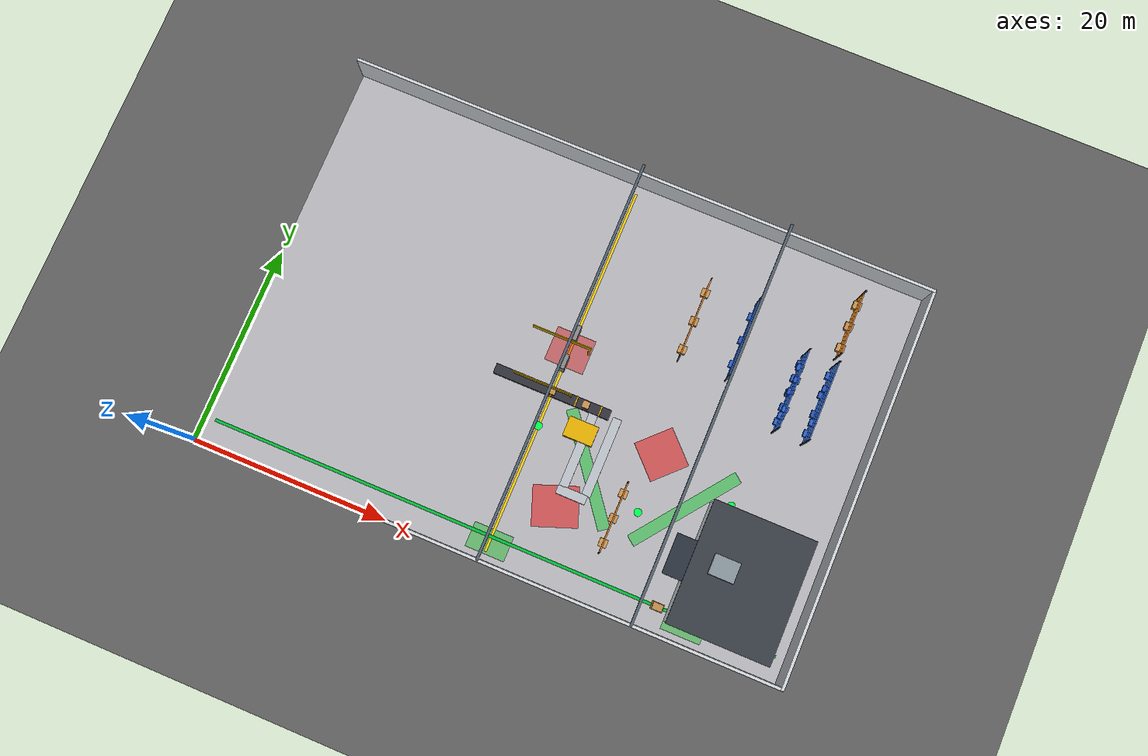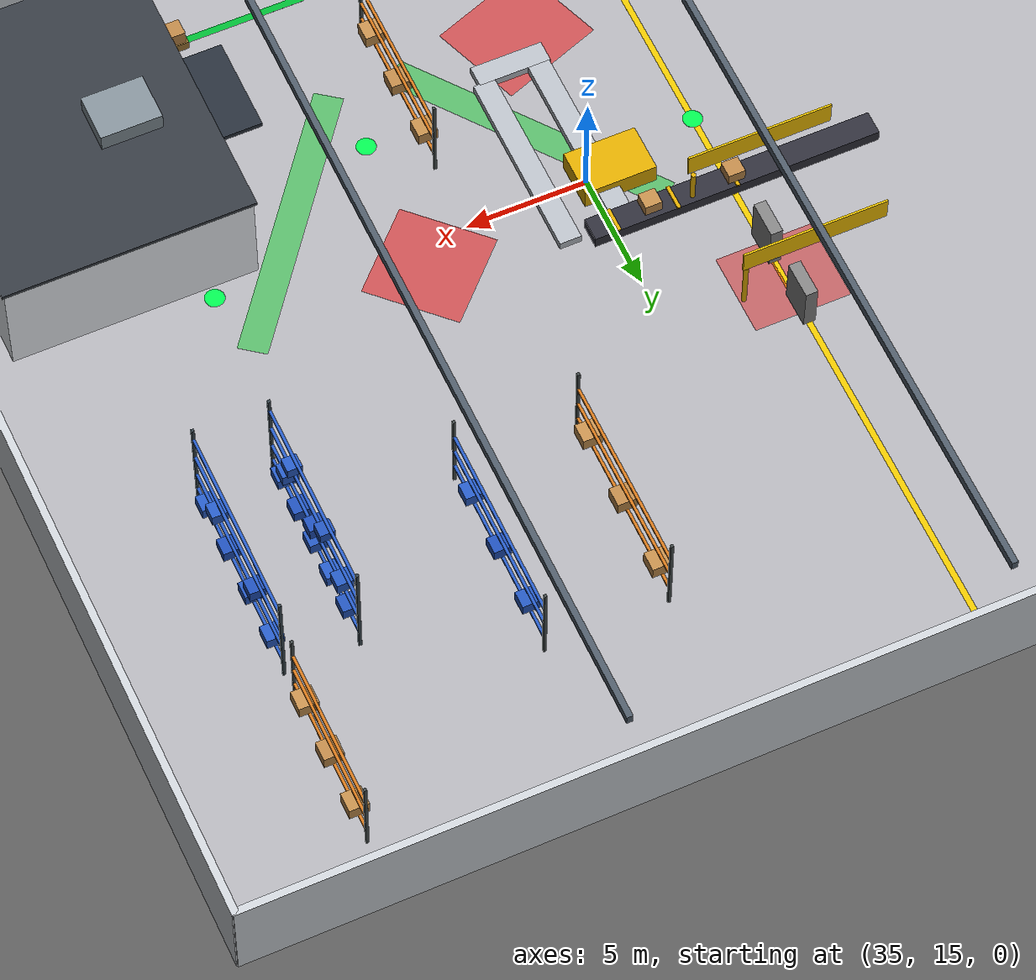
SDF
<sdf version="1.9">
 <world name="warehouse">
  <model name="ground_plane">
   <static>true</static>
   <link name="link">
    <collision name="collision">
     <geometry><plane><normal>0 0 1</normal><size>200 200</size></plane></geometry>
    </collision>
    <visual name="visual">
     <geometry><plane><normal>0 0 1</normal><size>200 200</size></plane></geometry>
     <material><ambient>0.35 0.35 0.35 1</ambient><diffuse>0.35 0.35 0.35 1</diffuse></material>
    </visual>
   </link>
  </model>
  <model name="warehouse_floor">
   <static>true</static>
   <pose>30 20 0.001 0 0 0</pose>
   <link name="link">
    <collision name="collision"><geometry><box><size>60.0 40.0 0.002</size></box></geometry></collision>
    <visual name="visual">
     <geometry><box><size>60.0 40.0 0.002</size></box></geometry>
     <material>
      <ambient>0.68 0.68 0.70 1</ambient>
      <diffuse>0.68 0.68 0.70 1</diffuse>
      <specular>0.15 0.15 0.15 1</specular>
     </material>
    </visual>
   </link>
  </model>
  <model name="wall_south">
   <static>true</static>
   <pose>30 0 2.0 0 0 0</pose>
   <link name="link">
    <collision name="c"><geometry><box><size>60.2 0.3 4.0</size></box></geometry></collision>
    <visual name="v">
     <geometry><box><size>60.2 0.3 4.0</size></box></geometry>
     <material><ambient>0.78 0.80 0.82 1</ambient><diffuse>0.78 0.80 0.82 1</diffuse></material>
    </visual>
   </link>
  </model>
  <model name="wall_north">
   <static>true</static>
   <pose>30 40 2.0 0 0 0</pose>
   <link name="link">
    <collision name="c"><geometry><box><size>60.2 0.3 4.0</size></box></geometry></collision>
    <visual name="v">
     <geometry><box><size>60.2 0.3 4.0</size></box></geometry>
     <material><ambient>0.78 0.80 0.82 1</ambient><diffuse>0.78 0.80 0.82 1</diffuse></material>
    </visual>
   </link>
  </model>
  <model name="wall_east">
   <static>true</static>
   <pose>60 20 2.0 0 0 0</pose>
   <link name="link">
    <collision name="c"><geometry><box><size>0.3 40.2 4.0</size></box></geometry></collision>
    <visual name="v">
     <geometry><box><size>0.3 40.2 4.0</size></box></geometry>
     <material><ambient>0.78 0.80 0.82 1</ambient><diffuse>0.78 0.80 0.82 1</diffuse></material>
    </visual>
   </link>
  </model>
  <model name="rack_B1_upright_l">
   <static>true</static>
   <pose>51.0 22.0 2.5 0 0 0</pose>
   <link name="link">
    <collision name="c"><geometry><box><size>0.12 0.12 5.0</size></box></geometry></collision>
    <visual name="v">
     <geometry><box><size>0.12 0.12 5.0</size></box></geometry>
     <material><ambient>0.2 0.25 0.28 1</ambient><diffuse>0.2 0.25 0.28 1</diffuse></material>
    </visual>
   </link>
  </model>
  <model name="rack_B1_upright_r">
   <static>true</static>
   <pose>51.0 30.0 2.5 0 0 0</pose>
   <link name="link">
    <collision name="c"><geometry><box><size>0.12 0.12 5.0</size></box></geometry></collision>
    <visual name="v">
     <geometry><box><size>0.12 0.12 5.0</size></box></geometry>
     <material><ambient>0.2 0.25 0.28 1</ambient><diffuse>0.2 0.25 0.28 1</diffuse></material>
    </visual>
   </link>
  </model>
  <model name="rack_B1_beam1">
   <static>true</static>
   <pose>51.0 26.0 1.0 0 0 0</pose>
   <link name="link">
    <collision name="c"><geometry><box><size>0.12 8.0 0.08</size></box></geometry></collision>
    <visual name="v">
     <geometry><box><size>0.12 8.0 0.08</size></box></geometry>
     <material><ambient>0.15 0.35 0.75 1</ambient><diffuse>0.15 0.35 0.75 1</diffuse></material>
    </visual>
   </link>
  </model>
  <model name="rack_B1_beam2">
   <static>true</static>
   <pose>51.0 26.0 2.0 0 0 0</pose>
   <link name="link">
    <collision name="c"><geometry><box><size>0.12 8.0 0.08</size></box></geometry></collision>
    <visual name="v">
     <geometry><box><size>0.12 8.0 0.08</size></box></geometry>
     <material><ambient>0.15 0.35 0.75 1</ambient><diffuse>0.15 0.35 0.75 1</diffuse></material>
    </visual>
   </link>
  </model>
  <model name="rack_B1_beam3">
   <static>true</static>
   <pose>51.0 26.0 3.2 0 0 0</pose>
   <link name="link">
    <collision name="c"><geometry><box><size>0.12 8.0 0.08</size></box></geometry></collision>
    <visual name="v">
     <geometry><box><size>0.12 8.0 0.08</size></box></geometry>
     <material><ambient>0.15 0.35 0.75 1</ambient><diffuse>0.15 0.35 0.75 1</diffuse></material>
    </visual>
   </link>
  </model>
  <model name="rack_B1_beam4">
   <static>true</static>
   <pose>51.0 26.0 4.4 0 0 0</pose>
   <link name="link">
    <collision name="c"><geometry><box><size>0.12 8.0 0.08</size></box></geometry></collision>
    <visual name="v">
     <geometry><box><size>0.12 8.0 0.08</size></box></geometry>
     <material><ambient>0.15 0.35 0.75 1</ambient><diffuse>0.15 0.35 0.75 1</diffuse></material>
    </visual>
   </link>
  </model>
  <model name="box_B1_t1_1">
   <static>true</static>
   <pose>51.0 23.0 1.3 0 0 0</pose>
   <link name="link">
    <collision name="c"><geometry><box><size>0.7 0.7 0.5</size></box></geometry></collision>
    <visual name="v">
     <geometry><box><size>0.7 0.7 0.5</size></box></geometry>
     <material><ambient>0.15 0.35 0.75 1</ambient><diffuse>0.15 0.35 0.75 1</diffuse></material>
    </visual>
   </link>
  </model>
  <model name="box_B1_t1_2">
   <static>true</static>
   <pose>51.0 24.5 1.3 0 0 0</pose>
   <link name="link">
    <collision name="c"><geometry><box><size>0.7 0.7 0.5</size></box></geometry></collision>
    <visual name="v">
     <geometry><box><size>0.7 0.7 0.5</size></box></geometry>
     <material><ambient>0.12 0.30 0.70 1</ambient><diffuse>0.12 0.30 0.70 1</diffuse></material>
    </visual>
   </link>
  </model>
  <model name="box_B1_t1_3">
   <static>true</static>
   <pose>51.0 26.0 1.3 0 0 0</pose>
   <link name="link">
    <collision name="c"><geometry><box><size>0.7 0.7 0.5</size></box></geometry></collision>
    <visual name="v">
     <geometry><box><size>0.7 0.7 0.5</size></box></geometry>
     <material><ambient>0.14 0.33 0.72 1</ambient><diffuse>0.14 0.33 0.72 1</diffuse></material>
    </visual>
   </link>
  </model>
  <model name="box_B1_t1_4">
   <static>true</static>
   <pose>51.0 27.5 1.3 0 0 0</pose>
   <link name="link">
    <collision name="c"><geometry><box><size>0.7 0.7 0.5</size></box></geometry></collision>
    <visual name="v">
     <geometry><box><size>0.7 0.7 0.5</size></box></geometry>
     <material><ambient>0.15 0.35 0.75 1</ambient><diffuse>0.15 0.35 0.75 1</diffuse></material>
    </visual>
   </link>
  </model>
  <model name="box_B1_t1_5">
   <static>true</static>
   <pose>51.0 29.0 1.3 0 0 0</pose>
   <link name="link">
    <collision name="c"><geometry><box><size>0.7 0.7 0.5</size></box></geometry></collision>
    <visual name="v">
     <geometry><box><size>0.7 0.7 0.5</size></box></geometry>
     <material><ambient>0.13 0.32 0.71 1</ambient><diffuse>0.13 0.32 0.71 1</diffuse></material>
    </visual>
   </link>
  </model>
  <model name="box_B1_t2_1">
   <static>true</static>
   <pose>51.0 23.5 2.3 0 0 0</pose>
   <link name="link">
    <collision name="c"><geometry><box><size>0.65 0.65 0.5</size></box></geometry></collision>
    <visual name="v">
     <geometry><box><size>0.65 0.65 0.5</size></box></geometry>
     <material><ambient>0.15 0.35 0.75 1</ambient><diffuse>0.15 0.35 0.75 1</diffuse></material>
    </visual>
   </link>
  </model>
  <model name="box_B1_t2_2">
   <static>true</static>
   <pose>51.0 26.0 2.3 0 0 0</pose>
   <link name="link">
    <collision name="c"><geometry><box><size>0.65 0.65 0.5</size></box></geometry></collision>
    <visual name="v">
     <geometry><box><size>0.65 0.65 0.5</size></box></geometry>
     <material><ambient>0.12 0.30 0.70 1</ambient><diffuse>0.12 0.30 0.70 1</diffuse></material>
    </visual>
   </link>
  </model>
  <model name="box_B1_t2_3">
   <static>true</static>
   <pose>51.0 28.5 2.3 0 0 0</pose>
   <link name="link">
    <collision name="c"><geometry><box><size>0.65 0.65 0.5</size></box></geometry></collision>
    <visual name="v">
     <geometry><box><size>0.65 0.65 0.5</size></box></geometry>
     <material><ambient>0.14 0.34 0.73 1</ambient><diffuse>0.14 0.34 0.73 1</diffuse></material>
    </visual>
   </link>
  </model>
  <model name="box_B1_t3_1">
   <static>true</static>
   <pose>51.0 24.0 3.5 0 0 0</pose>
   <link name="link">
    <collision name="c"><geometry><box><size>0.6 0.6 0.45</size></box></geometry></collision>
    <visual name="v">
     <geometry><box><size>0.6 0.6 0.45</size></box></geometry>
     <material><ambient>0.15 0.35 0.75 1</ambient><diffuse>0.15 0.35 0.75 1</diffuse></material>
    </visual>
   </link>
  </model>
  <model name="box_B1_t3_2">
   <static>true</static>
   <pose>51.0 27.0 3.5 0 0 0</pose>
   <link name="link">
    <collision name="c"><geometry><box><size>0.6 0.6 0.45</size></box></geometry></collision>
    <visual name="v">
     <geometry><box><size>0.6 0.6 0.45</size></box></geometry>
     <material><ambient>0.13 0.32 0.71 1</ambient><diffuse>0.13 0.32 0.71 1</diffuse></material>
    </visual>
   </link>
  </model>
  <model name="rack_B2_upright_l">
   <static>true</static>
   <pose>54.0 22.0 2.5 0 0 0</pose>
   <link name="link">
    <collision name="c"><geometry><box><size>0.12 0.12 5.0</size></box></geometry></collision>
    <visual name="v">
     <geometry><box><size>0.12 0.12 5.0</size></box></geometry>
     <material><ambient>0.2 0.25 0.28 1</ambient><diffuse>0.2 0.25 0.28 1</diffuse></material>
    </visual>
   </link>
  </model>
  <model name="rack_B2_upright_r">
   <static>true</static>
   <pose>54.0 30.0 2.5 0 0 0</pose>
   <link name="link">
    <collision name="c"><geometry><box><size>0.12 0.12 5.0</size></box></geometry></collision>
    <visual name="v">
     <geometry><box><size>0.12 0.12 5.0</size></box></geometry>
     <material><ambient>0.2 0.25 0.28 1</ambient><diffuse>0.2 0.25 0.28 1</diffuse></material>
    </visual>
   </link>
  </model>
  <model name="rack_B2_beam1">
   <static>true</static>
   <pose>54.0 26.0 1.0 0 0 0</pose>
   <link name="link">
    <collision name="c"><geometry><box><size>0.12 8.0 0.08</size></box></geometry></collision>
    <visual name="v">
     <geometry><box><size>0.12 8.0 0.08</size></box></geometry>
     <material><ambient>0.15 0.35 0.75 1</ambient><diffuse>0.15 0.35 0.75 1</diffuse></material>
    </visual>
   </link>
  </model>
  <model name="rack_B2_beam2">
   <static>true</static>
   <pose>54.0 26.0 2.0 0 0 0</pose>
   <link name="link">
    <collision name="c"><geometry><box><size>0.12 8.0 0.08</size></box></geometry></collision>
    <visual name="v">
     <geometry><box><size>0.12 8.0 0.08</size></box></geometry>
     <material><ambient>0.15 0.35 0.75 1</ambient><diffuse>0.15 0.35 0.75 1</diffuse></material>
    </visual>
   </link>
  </model>
  <model name="rack_B2_beam3">
   <static>true</static>
   <pose>54.0 26.0 3.2 0 0 0</pose>
   <link name="link">
    <collision name="c"><geometry><box><size>0.12 8.0 0.08</size></box></geometry></collision>
    <visual name="v">
     <geometry><box><size>0.12 8.0 0.08</size></box></geometry>
     <material><ambient>0.15 0.35 0.75 1</ambient><diffuse>0.15 0.35 0.75 1</diffuse></material>
    </visual>
   </link>
  </model>
  <model name="rack_B2_beam4">
   <static>true</static>
   <pose>54.0 26.0 4.4 0 0 0</pose>
   <link name="link">
    <collision name="c"><geometry><box><size>0.12 8.0 0.08</size></box></geometry></collision>
    <visual name="v">
     <geometry><box><size>0.12 8.0 0.08</size></box></geometry>
     <material><ambient>0.15 0.35 0.75 1</ambient><diffuse>0.15 0.35 0.75 1</diffuse></material>
    </visual>
   </link>
  </model>
  <model name="box_B2_t1_1">
   <static>true</static>
   <pose>54.0 23.0 1.3 0 0 0</pose>
   <link name="link">
    <collision name="c"><geometry><box><size>0.7 0.7 0.5</size></box></geometry></collision>
    <visual name="v">
     <geometry><box><size>0.7 0.7 0.5</size></box></geometry>
     <material><ambient>0.15 0.35 0.75 1</ambient><diffuse>0.15 0.35 0.75 1</diffuse></material>
    </visual>
   </link>
  </model>
  <model name="box_B2_t1_2">
   <static>true</static>
   <pose>54.0 25.0 1.3 0 0 0</pose>
   <link name="link">
    <collision name="c"><geometry><box><size>0.7 0.7 0.5</size></box></geometry></collision>
    <visual name="v">
     <geometry><box><size>0.7 0.7 0.5</size></box></geometry>
     <material><ambient>0.12 0.30 0.70 1</ambient><diffuse>0.12 0.30 0.70 1</diffuse></material>
    </visual>
   </link>
  </model>
  <model name="box_B2_t1_3">
   <static>true</static>
   <pose>54.0 27.0 1.3 0 0 0</pose>
   <link name="link">
    <collision name="c"><geometry><box><size>0.7 0.7 0.5</size></box></geometry></collision>
    <visual name="v">
     <geometry><box><size>0.7 0.7 0.5</size></box></geometry>
     <material><ambient>0.14 0.33 0.72 1</ambient><diffuse>0.14 0.33 0.72 1</diffuse></material>
    </visual>
   </link>
  </model>
  <model name="box_B2_t1_4">
   <static>true</static>
   <pose>54.0 29.0 1.3 0 0 0</pose>
   <link name="link">
    <collision name="c"><geometry><box><size>0.7 0.7 0.5</size></box></geometry></collision>
    <visual name="v">
     <geometry><box><size>0.7 0.7 0.5</size></box></geometry>
     <material><ambient>0.15 0.35 0.75 1</ambient><diffuse>0.15 0.35 0.75 1</diffuse></material>
    </visual>
   </link>
  </model>
  <model name="box_B2_t2_1">
   <static>true</static>
   <pose>54.0 24.0 2.3 0 0 0</pose>
   <link name="link">
    <collision name="c"><geometry><box><size>0.65 0.65 0.5</size></box></geometry></collision>
    <visual name="v">
     <geometry><box><size>0.65 0.65 0.5</size></box></geometry>
     <material><ambient>0.15 0.35 0.75 1</ambient><diffuse>0.15 0.35 0.75 1</diffuse></material>
    </visual>
   </link>
  </model>
  <model name="box_B2_t2_2">
   <static>true</static>
   <pose>54.0 27.5 2.3 0 0 0</pose>
   <link name="link">
    <collision name="c"><geometry><box><size>0.65 0.65 0.5</size></box></geometry></collision>
    <visual name="v">
     <geometry><box><size>0.65 0.65 0.5</size></box></geometry>
     <material><ambient>0.12 0.30 0.70 1</ambient><diffuse>0.12 0.30 0.70 1</diffuse></material>
    </visual>
   </link>
  </model>
  <model name="rack_B2b_upright_l">
   <static>true</static>
   <pose>54.0 31.0 2.0 0 0 0</pose>
   <link name="link">
    <collision name="c"><geometry><box><size>0.12 0.12 4.0</size></box></geometry></collision>
    <visual name="v">
     <geometry><box><size>0.12 0.12 4.0</size></box></geometry>
     <material><ambient>0.25 0.28 0.28 1</ambient><diffuse>0.25 0.28 0.28 1</diffuse></material>
    </visual>
   </link>
  </model>
  <model name="rack_B2b_upright_r">
   <static>true</static>
   <pose>54.0 37.5 2.0 0 0 0</pose>
   <link name="link">
    <collision name="c"><geometry><box><size>0.12 0.12 4.0</size></box></geometry></collision>
    <visual name="v">
     <geometry><box><size>0.12 0.12 4.0</size></box></geometry>
     <material><ambient>0.25 0.28 0.28 1</ambient><diffuse>0.25 0.28 0.28 1</diffuse></material>
    </visual>
   </link>
  </model>
  <model name="rack_B2b_beam1">
   <static>true</static>
   <pose>54.0 34.25 1.0 0 0 0</pose>
   <link name="link">
    <collision name="c"><geometry><box><size>0.12 6.5 0.08</size></box></geometry></collision>
    <visual name="v">
     <geometry><box><size>0.12 6.5 0.08</size></box></geometry>
     <material><ambient>0.8 0.45 0.1 1</ambient><diffuse>0.8 0.45 0.1 1</diffuse></material>
    </visual>
   </link>
  </model>
  <model name="rack_B2b_beam2">
   <static>true</static>
   <pose>54.0 34.25 2.0 0 0 0</pose>
   <link name="link">
    <collision name="c"><geometry><box><size>0.12 6.5 0.08</size></box></geometry></collision>
    <visual name="v">
     <geometry><box><size>0.12 6.5 0.08</size></box></geometry>
     <material><ambient>0.8 0.45 0.1 1</ambient><diffuse>0.8 0.45 0.1 1</diffuse></material>
    </visual>
   </link>
  </model>
  <model name="rack_B2b_beam3">
   <static>true</static>
   <pose>54.0 34.25 3.0 0 0 0</pose>
   <link name="link">
    <collision name="c"><geometry><box><size>0.12 6.5 0.08</size></box></geometry></collision>
    <visual name="v">
     <geometry><box><size>0.12 6.5 0.08</size></box></geometry>
     <material><ambient>0.8 0.45 0.1 1</ambient><diffuse>0.8 0.45 0.1 1</diffuse></material>
    </visual>
   </link>
  </model>
  <model name="box_B2b_t1_1">
   <static>true</static>
   <pose>54.0 32.0 1.3 0 0 0</pose>
   <link name="link">
    <collision name="c"><geometry><box><size>0.8 0.8 0.55</size></box></geometry></collision>
    <visual name="v">
     <geometry><box><size>0.8 0.8 0.55</size></box></geometry>
     <material><ambient>0.75 0.55 0.30 1</ambient><diffuse>0.75 0.55 0.30 1</diffuse></material>
    </visual>
   </link>
  </model>
  <model name="box_B2b_t1_2">
   <static>true</static>
   <pose>54.0 34.25 1.3 0 0 0</pose>
   <link name="link">
    <collision name="c"><geometry><box><size>0.8 0.8 0.55</size></box></geometry></collision>
    <visual name="v">
     <geometry><box><size>0.8 0.8 0.55</size></box></geometry>
     <material><ambient>0.72 0.52 0.28 1</ambient><diffuse>0.72 0.52 0.28 1</diffuse></material>
    </visual>
   </link>
  </model>
  <model name="box_B2b_t1_3">
   <static>true</static>
   <pose>54.0 36.5 1.3 0 0 0</pose>
   <link name="link">
    <collision name="c"><geometry><box><size>0.8 0.8 0.55</size></box></geometry></collision>
    <visual name="v">
     <geometry><box><size>0.8 0.8 0.55</size></box></geometry>
     <material><ambient>0.74 0.54 0.29 1</ambient><diffuse>0.74 0.54 0.29 1</diffuse></material>
    </visual>
   </link>
  </model>
  <model name="rack_C3_upright_l">
   <static>true</static>
   <pose>40.0 25.0 2.0 0 0 0</pose>
   <link name="link">
    <collision name="c"><geometry><box><size>0.12 0.12 4.0</size></box></geometry></collision>
    <visual name="v">
     <geometry><box><size>0.12 0.12 4.0</size></box></geometry>
     <material><ambient>0.25 0.28 0.28 1</ambient><diffuse>0.25 0.28 0.28 1</diffuse></material>
    </visual>
   </link>
  </model>
  <model name="rack_C3_upright_r">
   <static>true</static>
   <pose>40.0 33.0 2.0 0 0 0</pose>
   <link name="link">
    <collision name="c"><geometry><box><size>0.12 0.12 4.0</size></box></geometry></collision>
    <visual name="v">
     <geometry><box><size>0.12 0.12 4.0</size></box></geometry>
     <material><ambient>0.25 0.28 0.28 1</ambient><diffuse>0.25 0.28 0.28 1</diffuse></material>
    </visual>
   </link>
  </model>
  <model name="rack_C3_beam1">
   <static>true</static>
   <pose>40.0 29.0 1.0 0 0 0</pose>
   <link name="link">
    <collision name="c"><geometry><box><size>0.12 8.0 0.08</size></box></geometry></collision>
    <visual name="v">
     <geometry><box><size>0.12 8.0 0.08</size></box></geometry>
     <material><ambient>0.8 0.45 0.1 1</ambient><diffuse>0.8 0.45 0.1 1</diffuse></material>
    </visual>
   </link>
  </model>
  <model name="rack_C3_beam2">
   <static>true</static>
   <pose>40.0 29.0 2.0 0 0 0</pose>
   <link name="link">
    <collision name="c"><geometry><box><size>0.12 8.0 0.08</size></box></geometry></collision>
    <visual name="v">
     <geometry><box><size>0.12 8.0 0.08</size></box></geometry>
     <material><ambient>0.8 0.45 0.1 1</ambient><diffuse>0.8 0.45 0.1 1</diffuse></material>
    </visual>
   </link>
  </model>
  <model name="rack_C3_beam3">
   <static>true</static>
   <pose>40.0 29.0 3.0 0 0 0</pose>
   <link name="link">
    <collision name="c"><geometry><box><size>0.12 8.0 0.08</size></box></geometry></collision>
    <visual name="v">
     <geometry><box><size>0.12 8.0 0.08</size></box></geometry>
     <material><ambient>0.8 0.45 0.1 1</ambient><diffuse>0.8 0.45 0.1 1</diffuse></material>
    </visual>
   </link>
  </model>
  <model name="box_C3_t1_1">
   <static>true</static>
   <pose>40.0 26.0 1.3 0 0 0</pose>
   <link name="link">
    <collision name="c"><geometry><box><size>0.8 0.8 0.55</size></box></geometry></collision>
    <visual name="v">
     <geometry><box><size>0.8 0.8 0.55</size></box></geometry>
     <material><ambient>0.75 0.55 0.30 1</ambient><diffuse>0.75 0.55 0.30 1</diffuse></material>
    </visual>
   </link>
  </model>
  <model name="box_C3_t1_2">
   <static>true</static>
   <pose>40.0 29.0 1.3 0 0 0</pose>
   <link name="link">
    <collision name="c"><geometry><box><size>0.8 0.8 0.55</size></box></geometry></collision>
    <visual name="v">
     <geometry><box><size>0.8 0.8 0.55</size></box></geometry>
     <material><ambient>0.72 0.52 0.28 1</ambient><diffuse>0.72 0.52 0.28 1</diffuse></material>
    </visual>
   </link>
  </model>
  <model name="box_C3_t1_3">
   <static>true</static>
   <pose>40.0 32.0 1.3 0 0 0</pose>
   <link name="link">
    <collision name="c"><geometry><box><size>0.8 0.8 0.55</size></box></geometry></collision>
    <visual name="v">
     <geometry><box><size>0.8 0.8 0.55</size></box></geometry>
     <material><ambient>0.74 0.54 0.29 1</ambient><diffuse>0.74 0.54 0.29 1</diffuse></material>
    </visual>
   </link>
  </model>
  <model name="rack_C4_upright_l">
   <static>true</static>
   <pose>45.0 25.0 2.0 0 0 0</pose>
   <link name="link">
    <collision name="c"><geometry><box><size>0.12 0.12 4.0</size></box></geometry></collision>
    <visual name="v">
     <geometry><box><size>0.12 0.12 4.0</size></box></geometry>
     <material><ambient>0.25 0.28 0.28 1</ambient><diffuse>0.25 0.28 0.28 1</diffuse></material>
    </visual>
   </link>
  </model>
  <model name="rack_C4_upright_r">
   <static>true</static>
   <pose>45.0 33.0 2.0 0 0 0</pose>
   <link name="link">
    <collision name="c"><geometry><box><size>0.12 0.12 4.0</size></box></geometry></collision>
    <visual name="v">
     <geometry><box><size>0.12 0.12 4.0</size></box></geometry>
     <material><ambient>0.25 0.28 0.28 1</ambient><diffuse>0.25 0.28 0.28 1</diffuse></material>
    </visual>
   </link>
  </model>
  <model name="rack_C4_beam1">
   <static>true</static>
   <pose>45.0 29.0 1.0 0 0 0</pose>
   <link name="link">
    <collision name="c"><geometry><box><size>0.12 8.0 0.08</size></box></geometry></collision>
    <visual name="v">
     <geometry><box><size>0.12 8.0 0.08</size></box></geometry>
     <material><ambient>0.15 0.35 0.75 1</ambient><diffuse>0.15 0.35 0.75 1</diffuse></material>
    </visual>
   </link>
  </model>
  <model name="rack_C4_beam2">
   <static>true</static>
   <pose>45.0 29.0 2.0 0 0 0</pose>
   <link name="link">
    <collision name="c"><geometry><box><size>0.12 8.0 0.08</size></box></geometry></collision>
    <visual name="v">
     <geometry><box><size>0.12 8.0 0.08</size></box></geometry>
     <material><ambient>0.15 0.35 0.75 1</ambient><diffuse>0.15 0.35 0.75 1</diffuse></material>
    </visual>
   </link>
  </model>
  <model name="rack_C4_beam3">
   <static>true</static>
   <pose>45.0 29.0 3.0 0 0 0</pose>
   <link name="link">
    <collision name="c"><geometry><box><size>0.12 8.0 0.08</size></box></geometry></collision>
    <visual name="v">
     <geometry><box><size>0.12 8.0 0.08</size></box></geometry>
     <material><ambient>0.15 0.35 0.75 1</ambient><diffuse>0.15 0.35 0.75 1</diffuse></material>
    </visual>
   </link>
  </model>
  <model name="box_C4_t1_1">
   <static>true</static>
   <pose>45.0 26.5 1.3 0 0 0</pose>
   <link name="link">
    <collision name="c"><geometry><box><size>0.7 0.7 0.5</size></box></geometry></collision>
    <visual name="v">
     <geometry><box><size>0.7 0.7 0.5</size></box></geometry>
     <material><ambient>0.15 0.35 0.75 1</ambient><diffuse>0.15 0.35 0.75 1</diffuse></material>
    </visual>
   </link>
  </model>
  <model name="box_C4_t1_2">
   <static>true</static>
   <pose>45.0 29.0 1.3 0 0 0</pose>
   <link name="link">
    <collision name="c"><geometry><box><size>0.7 0.7 0.5</size></box></geometry></collision>
    <visual name="v">
     <geometry><box><size>0.7 0.7 0.5</size></box></geometry>
     <material><ambient>0.12 0.30 0.70 1</ambient><diffuse>0.12 0.30 0.70 1</diffuse></material>
    </visual>
   </link>
  </model>
  <model name="box_C4_t1_3">
   <static>true</static>
   <pose>45.0 31.5 1.3 0 0 0</pose>
   <link name="link">
    <collision name="c"><geometry><box><size>0.7 0.7 0.5</size></box></geometry></collision>
    <visual name="v">
     <geometry><box><size>0.7 0.7 0.5</size></box></geometry>
     <material><ambient>0.14 0.33 0.72 1</ambient><diffuse>0.14 0.33 0.72 1</diffuse></material>
    </visual>
   </link>
  </model>
  <model name="rack_D3_upright_l">
   <static>true</static>
   <pose>40.0 5.0 2.0 0 0 0</pose>
   <link name="link">
    <collision name="c"><geometry><box><size>0.12 0.12 4.0</size></box></geometry></collision>
    <visual name="v">
     <geometry><box><size>0.12 0.12 4.0</size></box></geometry>
     <material><ambient>0.25 0.28 0.28 1</ambient><diffuse>0.25 0.28 0.28 1</diffuse></material>
    </visual>
   </link>
  </model>
  <model name="rack_D3_upright_r">
   <static>true</static>
   <pose>40.0 12.0 2.0 0 0 0</pose>
   <link name="link">
    <collision name="c"><geometry><box><size>0.12 0.12 4.0</size></box></geometry></collision>
    <visual name="v">
     <geometry><box><size>0.12 0.12 4.0</size></box></geometry>
     <material><ambient>0.25 0.28 0.28 1</ambient><diffuse>0.25 0.28 0.28 1</diffuse></material>
    </visual>
   </link>
  </model>
  <model name="rack_D3_beam1">
   <static>true</static>
   <pose>40.0 8.5 1.0 0 0 0</pose>
   <link name="link">
    <collision name="c"><geometry><box><size>0.12 7.0 0.08</size></box></geometry></collision>
    <visual name="v">
     <geometry><box><size>0.12 7.0 0.08</size></box></geometry>
     <material><ambient>0.8 0.45 0.1 1</ambient><diffuse>0.8 0.45 0.1 1</diffuse></material>
    </visual>
   </link>
  </model>
  <model name="rack_D3_beam2">
   <static>true</static>
   <pose>40.0 8.5 2.0 0 0 0</pose>
   <link name="link">
    <collision name="c"><geometry><box><size>0.12 7.0 0.08</size></box></geometry></collision>
    <visual name="v">
     <geometry><box><size>0.12 7.0 0.08</size></box></geometry>
     <material><ambient>0.8 0.45 0.1 1</ambient><diffuse>0.8 0.45 0.1 1</diffuse></material>
    </visual>
   </link>
  </model>
  <model name="rack_D3_beam3">
   <static>true</static>
   <pose>40.0 8.5 3.0 0 0 0</pose>
   <link name="link">
    <collision name="c"><geometry><box><size>0.12 7.0 0.08</size></box></geometry></collision>
    <visual name="v">
     <geometry><box><size>0.12 7.0 0.08</size></box></geometry>
     <material><ambient>0.8 0.45 0.1 1</ambient><diffuse>0.8 0.45 0.1 1</diffuse></material>
    </visual>
   </link>
  </model>
  <model name="box_D3_t1_1">
   <static>true</static>
   <pose>40.0 6.0 1.3 0 0 0</pose>
   <link name="link">
    <collision name="c"><geometry><box><size>0.8 0.8 0.55</size></box></geometry></collision>
    <visual name="v">
     <geometry><box><size>0.8 0.8 0.55</size></box></geometry>
     <material><ambient>0.75 0.55 0.30 1</ambient><diffuse>0.75 0.55 0.30 1</diffuse></material>
    </visual>
   </link>
  </model>
  <model name="box_D3_t1_2">
   <static>true</static>
   <pose>40.0 8.5 1.3 0 0 0</pose>
   <link name="link">
    <collision name="c"><geometry><box><size>0.8 0.8 0.55</size></box></geometry></collision>
    <visual name="v">
     <geometry><box><size>0.8 0.8 0.55</size></box></geometry>
     <material><ambient>0.72 0.52 0.28 1</ambient><diffuse>0.72 0.52 0.28 1</diffuse></material>
    </visual>
   </link>
  </model>
  <model name="box_D3_t1_3">
   <static>true</static>
   <pose>40.0 11.0 1.3 0 0 0</pose>
   <link name="link">
    <collision name="c"><geometry><box><size>0.8 0.8 0.55</size></box></geometry></collision>
    <visual name="v">
     <geometry><box><size>0.8 0.8 0.55</size></box></geometry>
     <material><ambient>0.74 0.54 0.29 1</ambient><diffuse>0.74 0.54 0.29 1</diffuse></material>
    </visual>
   </link>
  </model>
  <model name="conveyor_main">
   <static>true</static>
   <pose>30.0 17.5 0.55 0 0 0</pose>
   <link name="link">
    <collision name="c"><geometry><box><size>12.0 1.0 0.5</size></box></geometry></collision>
    <visual name="v">
     <geometry><box><size>12.0 1.0 0.5</size></box></geometry>
     <material><ambient>0.18 0.18 0.22 1</ambient><diffuse>0.18 0.18 0.22 1</diffuse></material>
    </visual>
   </link>
  </model>
  <model name="conveyor_roller_3">
   <static>true</static>
   <pose>30.0 17.5 0.83 0 0 0</pose>
   <link name="link">
    <collision name="c"><geometry><box><size>0.15 1.05 0.08</size></box></geometry></collision>
    <visual name="v">
     <geometry><box><size>0.15 1.05 0.08</size></box></geometry>
     <material><ambient>0.85 0.65 0.0 1</ambient><diffuse>0.85 0.65 0.0 1</diffuse></material>
    </visual>
   </link>
  </model>
  <model name="conveyor_roller_4">
   <static>true</static>
   <pose>32.5 17.5 0.83 0 0 0</pose>
   <link name="link">
    <collision name="c"><geometry><box><size>0.15 1.05 0.08</size></box></geometry></collision>
    <visual name="v">
     <geometry><box><size>0.15 1.05 0.08</size></box></geometry>
     <material><ambient>0.85 0.65 0.0 1</ambient><diffuse>0.85 0.65 0.0 1</diffuse></material>
    </visual>
   </link>
  </model>
  <model name="conveyor_roller_5">
   <static>true</static>
   <pose>35.0 17.5 0.83 0 0 0</pose>
   <link name="link">
    <collision name="c"><geometry><box><size>0.15 1.05 0.08</size></box></geometry></collision>
    <visual name="v">
     <geometry><box><size>0.15 1.05 0.08</size></box></geometry>
     <material><ambient>0.85 0.65 0.0 1</ambient><diffuse>0.85 0.65 0.0 1</diffuse></material>
    </visual>
   </link>
  </model>
  <model name="box_conv_2">
   <static>true</static>
   <pose>30.0 17.5 1.15 0 0 0</pose>
   <link name="link">
    <collision name="c"><geometry><box><size>0.7 0.7 0.5</size></box></geometry></collision>
    <visual name="v">
     <geometry><box><size>0.7 0.7 0.5</size></box></geometry>
     <material><ambient>0.72 0.52 0.28 1</ambient><diffuse>0.72 0.52 0.28 1</diffuse></material>
    </visual>
   </link>
  </model>
  <model name="box_conv_3">
   <static>true</static>
   <pose>33.5 17.5 1.15 0 0 0</pose>
   <link name="link">
    <collision name="c"><geometry><box><size>0.7 0.7 0.5</size></box></geometry></collision>
    <visual name="v">
     <geometry><box><size>0.7 0.7 0.5</size></box></geometry>
     <material><ambient>0.74 0.54 0.29 1</ambient><diffuse>0.74 0.54 0.29 1</diffuse></material>
    </visual>
   </link>
  </model>
  <model name="workstation_2">
   <static>true</static>
   <pose>34.0 15.0 0.45 0 0 0</pose>
   <link name="link">
    <collision name="c"><geometry><box><size>3.0 2.0 0.9</size></box></geometry></collision>
    <visual name="v">
     <geometry><box><size>3.0 2.0 0.9</size></box></geometry>
     <material><ambient>0.85 0.65 0.0 1</ambient><diffuse>0.85 0.65 0.0 1</diffuse></material>
    </visual>
   </link>
  </model>
  <model name="choke_column_L">
   <static>true</static>
   <pose>30.0 20.5 1.0 0 0 0</pose>
   <link name="link">
    <collision name="c"><geometry><box><size>0.5 1.5 2.0</size></box></geometry></collision>
    <visual name="v">
     <geometry><box><size>0.5 1.5 2.0</size></box></geometry>
     <material><ambient>0.5 0.5 0.5 1</ambient><diffuse>0.5 0.5 0.5 1</diffuse></material>
    </visual>
   </link>
  </model>
  <model name="choke_column_R">
   <static>true</static>
   <pose>30.0 23.5 1.0 0 0 0</pose>
   <link name="link">
    <collision name="c"><geometry><box><size>0.5 1.5 2.0</size></box></geometry></collision>
    <visual name="v">
     <geometry><box><size>0.5 1.5 2.0</size></box></geometry>
     <material><ambient>0.5 0.5 0.5 1</ambient><diffuse>0.5 0.5 0.5 1</diffuse></material>
    </visual>
   </link>
  </model>
  <model name="lane_stripe_south">
   <static>true</static>
   <pose>30.0 2.5 0.003 0 0 0</pose>
   <link name="link">
    <collision name="c"><geometry><box><size>58.0 0.3 0.001</size></box></geometry></collision>
    <visual name="v">
     <geometry><box><size>58.0 0.3 0.001</size></box></geometry>
     <material><ambient>0.0 0.7 0.2 1</ambient><diffuse>0.0 0.7 0.2 1</diffuse></material>
    </visual>
   </link>
  </model>
  <model name="aisle_y_stripe_center">
   <static>true</static>
   <pose>30.0 20.0 0.003 0 0 0</pose>
   <link name="link">
    <collision name="c"><geometry><box><size>0.25 38.0 0.001</size></box></geometry></collision>
    <visual name="v">
     <geometry><box><size>0.25 38.0 0.001</size></box></geometry>
     <material><ambient>0.9 0.75 0.0 1</ambient><diffuse>0.9 0.75 0.0 1</diffuse></material>
    </visual>
   </link>
  </model>
  <model name="hazard_zone_choke">
   <static>true</static>
   <pose>30.0 22.0 0.003 0 0 0</pose>
   <link name="link">
    <collision name="c"><geometry><box><size>4.0 3.5 0.001</size></box></geometry></collision>
    <visual name="v">
     <geometry><box><size>4.0 3.5 0.001</size></box></geometry>
     <material><ambient>0.8 0.1 0.1 0.5</ambient><diffuse>0.8 0.1 0.1 0.5</diffuse></material>
    </visual>
   </link>
  </model>
  <model name="staging_zone_2">
   <static>true</static>
   <pose>30.0 2.0 0.003 0 0 0</pose>
   <link name="link">
    <collision name="c"><geometry><box><size>4.0 2.5 0.001</size></box></geometry></collision>
    <visual name="v">
     <geometry><box><size>4.0 2.5 0.001</size></box></geometry>
     <material><ambient>0.1 0.7 0.15 0.5</ambient><diffuse>0.1 0.7 0.15 0.5</diffuse></material>
    </visual>
   </link>
  </model>
  <model name="staging_zone_3">
   <static>true</static>
   <pose>50.0 2.0 0.003 0 0 0</pose>
   <link name="link">
    <collision name="c"><geometry><box><size>4.0 2.5 0.001</size></box></geometry></collision>
    <visual name="v">
     <geometry><box><size>4.0 2.5 0.001</size></box></geometry>
     <material><ambient>0.1 0.7 0.15 0.5</ambient><diffuse>0.1 0.7 0.15 0.5</diffuse></material>
    </visual>
   </link>
  </model>
  <model name="pallet_stack_2">
   <static>true</static>
   <pose>47.0 2.5 0.2 0 0 0</pose>
   <link name="link">
    <collision name="c"><geometry><box><size>1.2 0.8 0.4</size></box></geometry></collision>
    <visual name="v">
     <geometry><box><size>1.2 0.8 0.4</size></box></geometry>
     <material><ambient>0.6 0.45 0.2 1</ambient><diffuse>0.6 0.45 0.2 1</diffuse></material>
    </visual>
   </link>
  </model>
  <model name="pallet_boxes_2">
   <static>true</static>
   <pose>47.0 2.5 0.7 0 0 0</pose>
   <link name="link">
    <collision name="c"><geometry><box><size>1.0 0.7 0.6</size></box></geometry></collision>
    <visual name="v">
     <geometry><box><size>1.0 0.7 0.6</size></box></geometry>
     <material><ambient>0.71 0.51 0.27 1</ambient><diffuse>0.71 0.51 0.27 1</diffuse></material>
    </visual>
   </link>
  </model>
  <model name="control_hub_main">
   <static>true</static>
   <pose>53.0 7.5 2.25 0 0 0</pose>
   <link name="link">
    <collision name="c"><geometry><box><size>10.0 12.0 4.5</size></box></geometry></collision>
    <visual name="v">
     <geometry><box><size>10.0 12.0 4.5</size></box></geometry>
     <material>
      <ambient>0.92 0.94 0.96 1</ambient>
      <diffuse>0.92 0.94 0.96 1</diffuse>
      <specular>0.3 0.3 0.3 1</specular>
     </material>
    </visual>
   </link>
  </model>
  <model name="control_hub_roof_trim">
   <static>true</static>
   <pose>53.0 7.5 4.55 0 0 0</pose>
   <link name="link">
    <visual name="v">
     <geometry><box><size>10.2 12.2 0.15</size></box></geometry>
     <material><ambient>0.2 0.22 0.25 1</ambient><diffuse>0.2 0.22 0.25 1</diffuse></material>
    </visual>
   </link>
  </model>
  <model name="control_hub_hvac">
   <static>true</static>
   <pose>51.0 8.0 4.95 0 0 0</pose>
   <link name="link">
    <visual name="v">
     <geometry><box><size>2.5 2.0 0.8</size></box></geometry>
     <material><ambient>0.5 0.55 0.58 1</ambient><diffuse>0.5 0.55 0.58 1</diffuse></material>
    </visual>
   </link>
  </model>
  <model name="control_hub_canopy">
   <static>true</static>
   <pose>47.0 7.5 3.2 0 0 0</pose>
   <link name="link">
    <visual name="v">
     <geometry><box><size>2.0 4.0 0.2</size></box></geometry>
     <material><ambient>0.15 0.18 0.22 1</ambient><diffuse>0.15 0.18 0.22 1</diffuse></material>
    </visual>
   </link>
  </model>
  <model name="mezz_col_2">
   <static>true</static>
   <pose>31.8 17.7 1.1 0 0 0</pose>
   <link name="link">
    <collision name="c">
     <geometry><cylinder><radius>0.1</radius><length>2.2</length></cylinder></geometry>
    </collision>
    <visual name="v">
     <geometry><cylinder><radius>0.1</radius><length>2.2</length></cylinder></geometry>
     <material><ambient>0.85 0.65 0.0 1</ambient><diffuse>0.85 0.65 0.0 1</diffuse></material>
    </visual>
   </link>
  </model>
  <model name="mezz_col_4">
   <static>true</static>
   <pose>31.8 22.3 1.1 0 0 0</pose>
   <link name="link">
    <collision name="c">
     <geometry><cylinder><radius>0.1</radius><length>2.2</length></cylinder></geometry>
    </collision>
    <visual name="v">
     <geometry><cylinder><radius>0.1</radius><length>2.2</length></cylinder></geometry>
     <material><ambient>0.85 0.65 0.0 1</ambient><diffuse>0.85 0.65 0.0 1</diffuse></material>
    </visual>
   </link>
  </model>
  <model name="mezz_rail_front">
   <static>true</static>
   <pose>29.0 17.6 2.8 0 0 0</pose>
   <link name="link">
    <visual name="v">
     <geometry><box><size>6.0 0.08 1.0</size></box></geometry>
     <material><ambient>0.95 0.75 0.0 1</ambient><diffuse>0.95 0.75 0.0 1</diffuse></material>
    </visual>
   </link>
  </model>
  <model name="mezz_rail_back">
   <static>true</static>
   <pose>29.0 22.4 2.8 0 0 0</pose>
   <link name="link">
    <visual name="v">
     <geometry><box><size>6.0 0.08 1.0</size></box></geometry>
     <material><ambient>0.95 0.75 0.0 1</ambient><diffuse>0.95 0.75 0.0 1</diffuse></material>
    </visual>
   </link>
  </model>
  <model name="conv_leg_out">
   <static>true</static>
   <pose>34.5 13.5 0.4 0 0 0</pose>
   <link name="link">
    <collision name="c"><geometry><box><size>0.9 8.0 0.35</size></box></geometry></collision>
    <visual name="v">
     <geometry><box><size>0.9 8.0 0.35</size></box></geometry>
     <material>
      <ambient>0.7 0.72 0.75 1</ambient>
      <diffuse>0.7 0.72 0.75 1</diffuse>
      <specular>0.4 0.4 0.4 1</specular>
     </material>
    </visual>
   </link>
  </model>
  <model name="conv_turn_spur">
   <static>true</static>
   <pose>35.5 9.1 0.4 0 0 0</pose>
   <link name="link">
    <collision name="c"><geometry><box><size>3.0 0.9 0.35</size></box></geometry></collision>
    <visual name="v">
     <geometry><box><size>3.0 0.9 0.35</size></box></geometry>
     <material><ambient>0.7 0.72 0.75 1</ambient><diffuse>0.7 0.72 0.75 1</diffuse></material>
    </visual>
   </link>
  </model>
  <model name="conv_leg_ret">
   <static>true</static>
   <pose>36.8 13.5 0.4 0 0 0</pose>
   <link name="link">
    <collision name="c"><geometry><box><size>0.9 8.0 0.35</size></box></geometry></collision>
    <visual name="v">
     <geometry><box><size>0.9 8.0 0.35</size></box></geometry>
     <material><ambient>0.7 0.72 0.75 1</ambient><diffuse>0.7 0.72 0.75 1</diffuse></material>
    </visual>
   </link>
  </model>
  <model name="conflict_zone_conveyor">
   <static>true</static>
   <pose>34.5 7.5 0.003 0 0 0.35</pose>
   <link name="link">
    <visual name="v">
     <geometry><box><size>4.5 4.0 0.001</size></box></geometry>
     <material><ambient>0.85 0.15 0.15 0.65</ambient><diffuse>0.85 0.15 0.15 0.65</diffuse></material>
    </visual>
   </link>
  </model>
  <model name="conflict_zone_east">
   <static>true</static>
   <pose>42.0 16.0 0.003 0 0 0.785</pose>
   <link name="link">
    <visual name="v">
     <geometry><box><size>4.0 4.0 0.001</size></box></geometry>
     <material><ambient>0.85 0.15 0.15 0.65</ambient><diffuse>0.85 0.15 0.15 0.65</diffuse></material>
    </visual>
   </link>
  </model>
  <model name="corridor_diag_3">
   <static>true</static>
   <pose>36.0 12.0 0.003 0 0 0.65</pose>
   <link name="link">
    <visual name="v">
     <geometry><box><size>1.2 12.0 0.001</size></box></geometry>
     <material><ambient>0.1 0.75 0.2 0.55</ambient><diffuse>0.1 0.75 0.2 0.55</diffuse></material>
    </visual>
   </link>
  </model>
  <model name="corridor_diag_4">
   <static>true</static>
   <pose>46.0 12.0 0.003 0 0 -0.65</pose>
   <link name="link">
    <visual name="v">
     <geometry><box><size>1.2 12.0 0.001</size></box></geometry>
     <material><ambient>0.1 0.75 0.2 0.55</ambient><diffuse>0.1 0.75 0.2 0.55</diffuse></material>
    </visual>
   </link>
  </model>
  <model name="wp_node_3">
   <static>true</static>
   <pose>30.0 14.0 0.004 0 0 0</pose>
   <link name="link">
    <visual name="v">
     <geometry><cylinder><radius>0.4</radius><length>0.002</length></cylinder></geometry>
     <material><ambient>0.0 1.0 0.3 1</ambient><diffuse>0.0 1.0 0.3 1</diffuse></material>
    </visual>
   </link>
  </model>
  <model name="wp_node_4">
   <static>true</static>
   <pose>42.0 10.0 0.004 0 0 0</pose>
   <link name="link">
    <visual name="v">
     <geometry><cylinder><radius>0.4</radius><length>0.002</length></cylinder></geometry>
     <material><ambient>0.0 1.0 0.3 1</ambient><diffuse>0.0 1.0 0.3 1</diffuse></material>
    </visual>
   </link>
  </model>
  <model name="wp_node_5">
   <static>true</static>
   <pose>50.0 14.0 0.004 0 0 0</pose>
   <link name="link">
    <visual name="v">
     <geometry><cylinder><radius>0.4</radius><length>0.002</length></cylinder></geometry>
     <material><ambient>0.0 1.0 0.3 1</ambient><diffuse>0.0 1.0 0.3 1</diffuse></material>
    </visual>
   </link>
  </model>
  <model name="truss_2">
   <static>true</static>
   <pose>30.0 20.0 6.5 0 0 0</pose>
   <link name="link">
    <visual name="v">
     <geometry><box><size>0.25 40.0 0.4</size></box></geometry>
     <material><ambient>0.3 0.35 0.4 1</ambient><diffuse>0.3 0.35 0.4 1</diffuse></material>
    </visual>
   </link>
  </model>
  <model name="truss_3">
   <static>true</static>
   <pose>45.0 20.0 6.5 0 0 0</pose>
   <link name="link">
    <visual name="v">
     <geometry><box><size>0.25 40.0 0.4</size></box></geometry>
     <material><ambient>0.3 0.35 0.4 1</ambient><diffuse>0.3 0.35 0.4 1</diffuse></material>
    </visual>
   </link>
  </model>
 </world>
</sdf>
